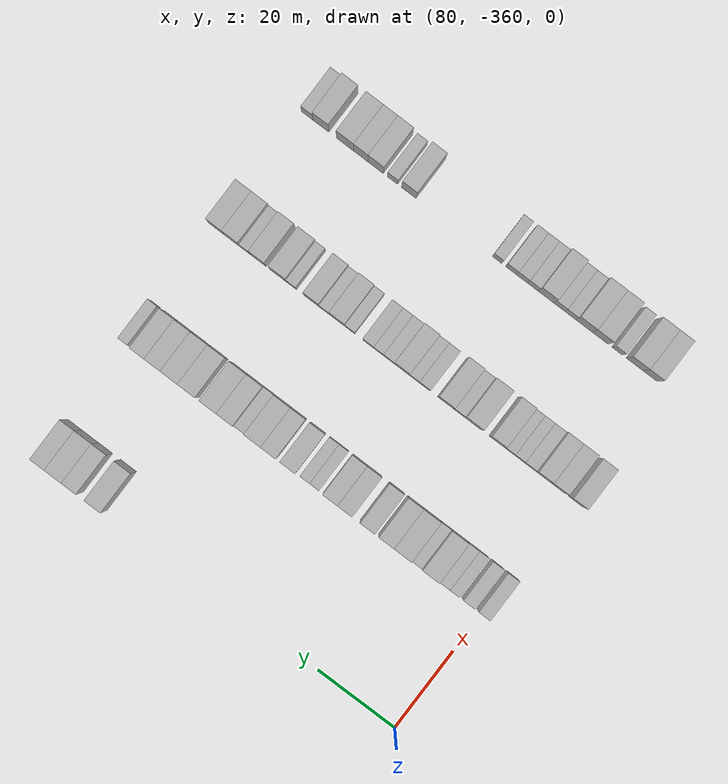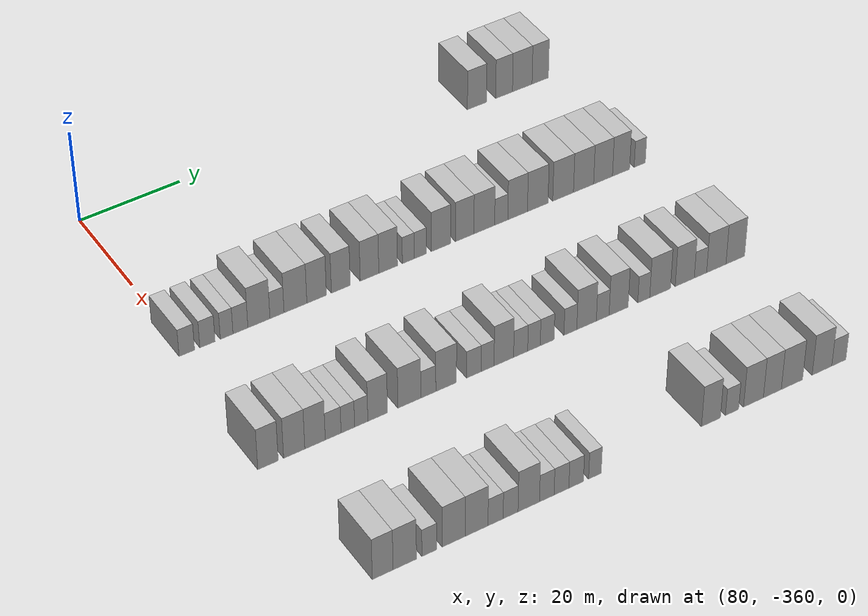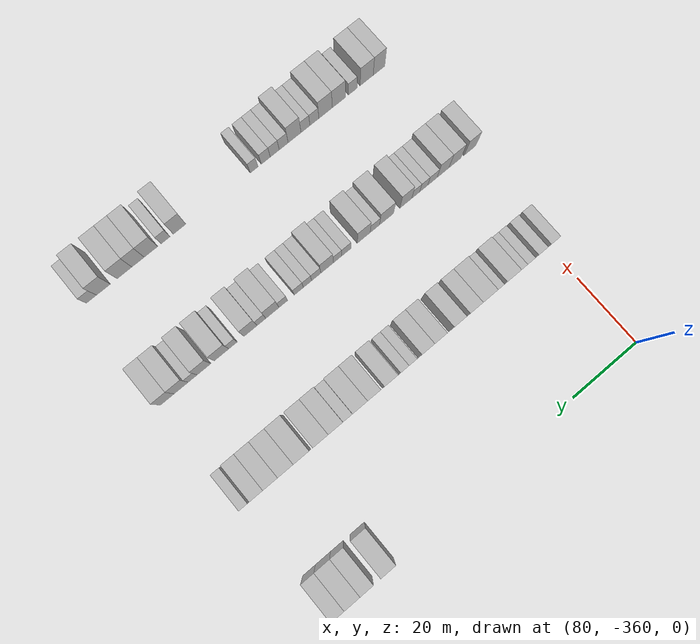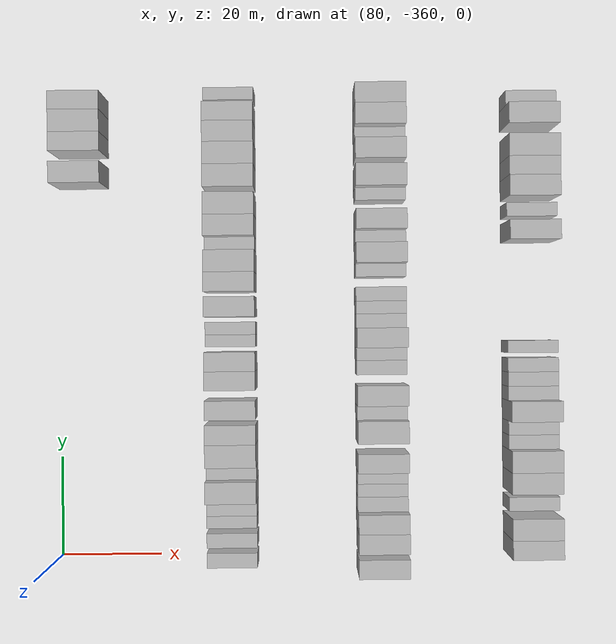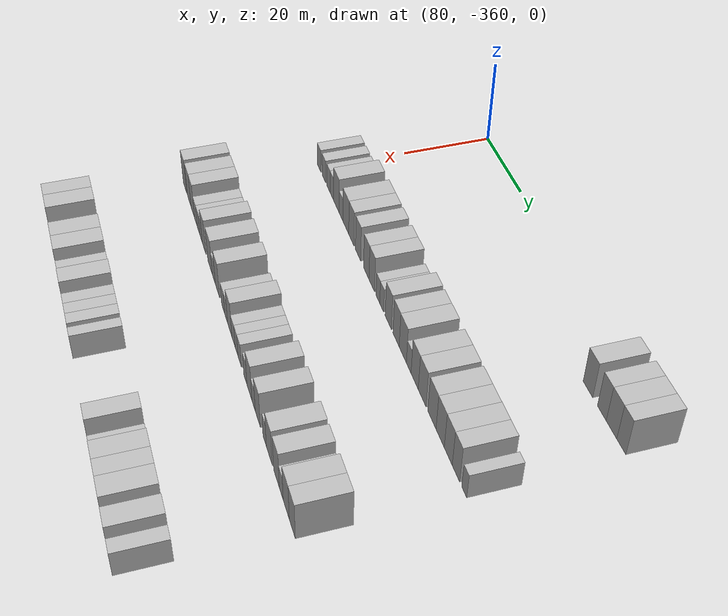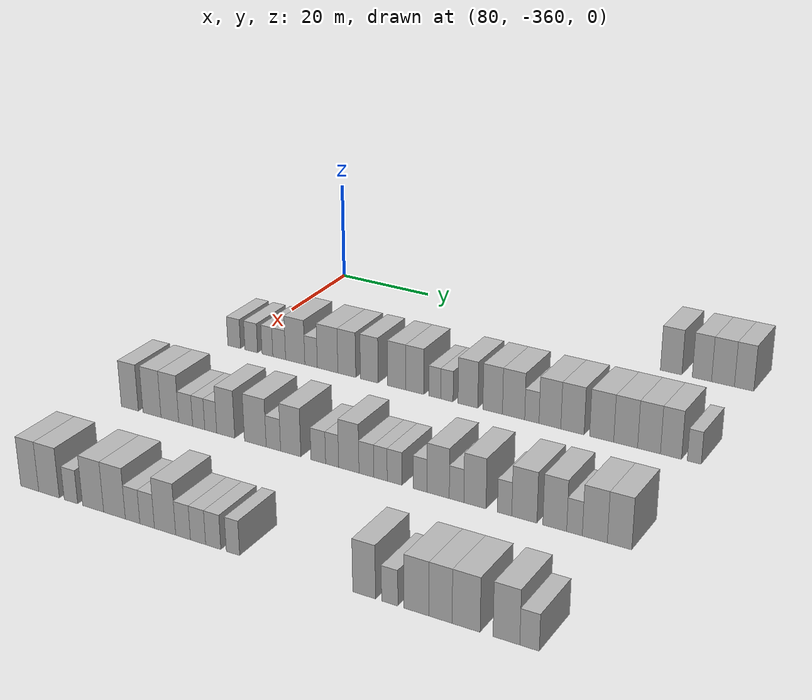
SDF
<sdf version="1.6">
 <world name="default">
  <model name="building_519">
   <static>1</static>
   <pose>85.0000 -283.2547 0 0.000000 0.000000 0.000000</pose>
   <link name="link">
    <pose>0 0 4.50 0 0 0</pose>
    <collision name="collision"><geometry><box><size>10.0000 4.2065 9.0000</size></box></geometry></collision>
    <visual name="visual">
     <cast_shadows>0</cast_shadows>
     <geometry><box><size>10.0000 4.2065 9.0000</size></box></geometry>
     <material>
      <script>
       <uri>model://HANNAS_wall/materials/scripts</uri>
       <uri>model://HANNAS_wall/materials/textures</uri>
       <name>vrc/HANNAS_wall</name>
      </script>
     </material>
    </visual>
   </link>
  </model>
  <model name="building_520">
   <static>1</static>
   <pose>85.0000 -277.2951 0 0.000000 0.000000 0.000000</pose>
   <link name="link">
    <pose>0 0 4.50 0 0 0</pose>
    <collision name="collision"><geometry><box><size>10.0000 3.7126 9.0000</size></box></geometry></collision>
    <visual name="visual">
     <cast_shadows>0</cast_shadows>
     <geometry><box><size>10.0000 3.7126 9.0000</size></box></geometry>
     <material>
      <script>
       <uri>model://HANNAS_wall/materials/scripts</uri>
       <uri>model://HANNAS_wall/materials/textures</uri>
       <name>vrc/HANNAS_wall</name>
      </script>
     </material>
    </visual>
   </link>
  </model>
  <model name="building_521">
   <static>1</static>
   <pose>85.0000 -273.2657 0 0.000000 0.000000 0.000000</pose>
   <link name="link">
    <pose>0 0 4.50 0 0 0</pose>
    <collision name="collision"><geometry><box><size>10.0000 4.3462 9.0000</size></box></geometry></collision>
    <visual name="visual">
     <cast_shadows>0</cast_shadows>
     <geometry><box><size>10.0000 4.3462 9.0000</size></box></geometry>
     <material>
      <script>
       <uri>model://HANNAS_wall/materials/scripts</uri>
       <uri>model://HANNAS_wall/materials/textures</uri>
       <name>vrc/HANNAS_wall</name>
      </script>
     </material>
    </visual>
   </link>
  </model>
  <model name="building_522">
   <static>1</static>
   <pose>85.0000 -269.2629 0 0.000000 0.000000 0.000000</pose>
   <link name="link">
    <pose>0 0 4.50 0 0 0</pose>
    <collision name="collision"><geometry><box><size>10.0000 3.6595 9.0000</size></box></geometry></collision>
    <visual name="visual">
     <cast_shadows>0</cast_shadows>
     <geometry><box><size>10.0000 3.6595 9.0000</size></box></geometry>
     <material>
      <script>
       <uri>model://HANNAS_wall/materials/scripts</uri>
       <uri>model://HANNAS_wall/materials/textures</uri>
       <name>vrc/HANNAS_wall</name>
      </script>
     </material>
    </visual>
   </link>
  </model>
  <model name="building_735">
   <static>1</static>
   <pose>115.0000 -360.0520 0 0.000000 0.000000 0.000000</pose>
   <link name="link">
    <pose>0 0 3.00 0 0 0</pose>
    <collision name="collision"><geometry><box><size>10.0000 2.9397 6.0000</size></box></geometry></collision>
    <visual name="visual">
     <cast_shadows>0</cast_shadows>
     <geometry><box><size>10.0000 2.9397 6.0000</size></box></geometry>
     <material>
      <script>
       <uri>model://HANNAS_wall/materials/scripts</uri>
       <uri>model://HANNAS_wall/materials/textures</uri>
       <name>vrc/HANNAS_wall</name>
      </script>
     </material>
    </visual>
   </link>
  </model>
  <model name="building_736">
   <static>1</static>
   <pose>115.0000 -356.1269 0 0.000000 0.000000 0.000000</pose>
   <link name="link">
    <pose>0 0 3.00 0 0 0</pose>
    <collision name="collision"><geometry><box><size>10.0000 2.9107 6.0000</size></box></geometry></collision>
    <visual name="visual">
     <cast_shadows>0</cast_shadows>
     <geometry><box><size>10.0000 2.9107 6.0000</size></box></geometry>
     <material>
      <script>
       <uri>model://HANNAS_wall/materials/scripts</uri>
       <uri>model://HANNAS_wall/materials/textures</uri>
       <name>vrc/HANNAS_wall</name>
      </script>
     </material>
    </visual>
   </link>
  </model>
  <model name="building_737">
   <static>1</static>
   <pose>115.0000 -352.4538 0 0.000000 0.000000 0.000000</pose>
   <link name="link">
    <pose>0 0 3.00 0 0 0</pose>
    <collision name="collision"><geometry><box><size>10.0000 2.4354 6.0000</size></box></geometry></collision>
    <visual name="visual">
     <cast_shadows>0</cast_shadows>
     <geometry><box><size>10.0000 2.4354 6.0000</size></box></geometry>
     <material>
      <script>
       <uri>model://HANNAS_wall/materials/scripts</uri>
       <uri>model://HANNAS_wall/materials/textures</uri>
       <name>vrc/HANNAS_wall</name>
      </script>
     </material>
    </visual>
   </link>
  </model>
  <model name="building_738">
   <static>1</static>
   <pose>115.0000 -349.7997 0 0.000000 0.000000 0.000000</pose>
   <link name="link">
    <pose>0 0 3.00 0 0 0</pose>
    <collision name="collision"><geometry><box><size>10.0000 2.8729 6.0000</size></box></geometry></collision>
    <visual name="visual">
     <cast_shadows>0</cast_shadows>
     <geometry><box><size>10.0000 2.8729 6.0000</size></box></geometry>
     <material>
      <script>
       <uri>model://HANNAS_wall/materials/scripts</uri>
       <uri>model://HANNAS_wall/materials/textures</uri>
       <name>vrc/HANNAS_wall</name>
      </script>
     </material>
    </visual>
   </link>
  </model>
  <model name="building_739">
   <static>1</static>
   <pose>115.0000 -346.2221 0 0.000000 0.000000 0.000000</pose>
   <link name="link">
    <pose>0 0 4.50 0 0 0</pose>
    <collision name="collision"><geometry><box><size>10.0000 4.2822 9.0000</size></box></geometry></collision>
    <visual name="visual">
     <cast_shadows>0</cast_shadows>
     <geometry><box><size>10.0000 4.2822 9.0000</size></box></geometry>
     <material>
      <script>
       <uri>model://HANNAS_wall/materials/scripts</uri>
       <uri>model://HANNAS_wall/materials/textures</uri>
       <name>vrc/HANNAS_wall</name>
      </script>
     </material>
    </visual>
   </link>
  </model>
  <model name="building_740">
   <static>1</static>
   <pose>115.0000 -342.7054 0 0.000000 0.000000 0.000000</pose>
   <link name="link">
    <pose>0 0 3.00 0 0 0</pose>
    <collision name="collision"><geometry><box><size>10.0000 2.7513 6.0000</size></box></geometry></collision>
    <visual name="visual">
     <cast_shadows>0</cast_shadows>
     <geometry><box><size>10.0000 2.7513 6.0000</size></box></geometry>
     <material>
      <script>
       <uri>model://HANNAS_wall/materials/scripts</uri>
       <uri>model://HANNAS_wall/materials/textures</uri>
       <name>vrc/HANNAS_wall</name>
      </script>
     </material>
    </visual>
   </link>
  </model>
  <model name="building_741">
   <static>1</static>
   <pose>115.0000 -339.0906 0 0.000000 0.000000 0.000000</pose>
   <link name="link">
    <pose>0 0 4.50 0 0 0</pose>
    <collision name="collision"><geometry><box><size>10.0000 4.4783 9.0000</size></box></geometry></collision>
    <visual name="visual">
     <cast_shadows>0</cast_shadows>
     <geometry><box><size>10.0000 4.4783 9.0000</size></box></geometry>
     <material>
      <script>
       <uri>model://HANNAS_wall/materials/scripts</uri>
       <uri>model://HANNAS_wall/materials/textures</uri>
       <name>vrc/HANNAS_wall</name>
      </script>
     </material>
    </visual>
   </link>
  </model>
  <model name="building_742">
   <static>1</static>
   <pose>115.0000 -334.9211 0 0.000000 0.000000 0.000000</pose>
   <link name="link">
    <pose>0 0 4.50 0 0 0</pose>
    <collision name="collision"><geometry><box><size>10.0000 3.8606 9.0000</size></box></geometry></collision>
    <visual name="visual">
     <cast_shadows>0</cast_shadows>
     <geometry><box><size>10.0000 3.8606 9.0000</size></box></geometry>
     <material>
      <script>
       <uri>model://HANNAS_wall/materials/scripts</uri>
       <uri>model://HANNAS_wall/materials/textures</uri>
       <name>vrc/HANNAS_wall</name>
      </script>
     </material>
    </visual>
   </link>
  </model>
  <model name="building_743">
   <static>1</static>
   <pose>115.0000 -330.1153 0 0.000000 0.000000 0.000000</pose>
   <link name="link">
    <pose>0 0 4.50 0 0 0</pose>
    <collision name="collision"><geometry><box><size>10.0000 3.7510 9.0000</size></box></geometry></collision>
    <visual name="visual">
     <cast_shadows>0</cast_shadows>
     <geometry><box><size>10.0000 3.7510 9.0000</size></box></geometry>
     <material>
      <script>
       <uri>model://HANNAS_wall/materials/scripts</uri>
       <uri>model://HANNAS_wall/materials/textures</uri>
       <name>vrc/HANNAS_wall</name>
      </script>
     </material>
    </visual>
   </link>
  </model>
  <model name="building_744">
   <static>1</static>
   <pose>115.0000 -324.3725 0 0.000000 0.000000 0.000000</pose>
   <link name="link">
    <pose>0 0 4.50 0 0 0</pose>
    <collision name="collision"><geometry><box><size>10.0000 3.7345 9.0000</size></box></geometry></collision>
    <visual name="visual">
     <cast_shadows>0</cast_shadows>
     <geometry><box><size>10.0000 3.7345 9.0000</size></box></geometry>
     <material>
      <script>
       <uri>model://HANNAS_wall/materials/scripts</uri>
       <uri>model://HANNAS_wall/materials/textures</uri>
       <name>vrc/HANNAS_wall</name>
      </script>
     </material>
    </visual>
   </link>
  </model>
  <model name="building_745">
   <static>1</static>
   <pose>115.0000 -320.6207 0 0.000000 0.000000 0.000000</pose>
   <link name="link">
    <pose>0 0 4.50 0 0 0</pose>
    <collision name="collision"><geometry><box><size>10.0000 3.7691 9.0000</size></box></geometry></collision>
    <visual name="visual">
     <cast_shadows>0</cast_shadows>
     <geometry><box><size>10.0000 3.7691 9.0000</size></box></geometry>
     <material>
      <script>
       <uri>model://HANNAS_wall/materials/scripts</uri>
       <uri>model://HANNAS_wall/materials/textures</uri>
       <name>vrc/HANNAS_wall</name>
      </script>
     </material>
    </visual>
   </link>
  </model>
  <model name="building_746">
   <static>1</static>
   <pose>115.0000 -316.5334 0 0.000000 0.000000 0.000000</pose>
   <link name="link">
    <pose>0 0 3.00 0 0 0</pose>
    <collision name="collision"><geometry><box><size>10.0000 2.4054 6.0000</size></box></geometry></collision>
    <visual name="visual">
     <cast_shadows>0</cast_shadows>
     <geometry><box><size>10.0000 2.4054 6.0000</size></box></geometry>
     <material>
      <script>
       <uri>model://HANNAS_wall/materials/scripts</uri>
       <uri>model://HANNAS_wall/materials/textures</uri>
       <name>vrc/HANNAS_wall</name>
      </script>
     </material>
    </visual>
   </link>
  </model>
  <model name="building_747">
   <static>1</static>
   <pose>115.0000 -314.0734 0 0.000000 0.000000 0.000000</pose>
   <link name="link">
    <pose>0 0 3.00 0 0 0</pose>
    <collision name="collision"><geometry><box><size>10.0000 2.5146 6.0000</size></box></geometry></collision>
    <visual name="visual">
     <cast_shadows>0</cast_shadows>
     <geometry><box><size>10.0000 2.5146 6.0000</size></box></geometry>
     <material>
      <script>
       <uri>model://HANNAS_wall/materials/scripts</uri>
       <uri>model://HANNAS_wall/materials/textures</uri>
       <name>vrc/HANNAS_wall</name>
      </script>
     </material>
    </visual>
   </link>
  </model>
  <model name="building_748">
   <static>1</static>
   <pose>115.0000 -309.8380 0 0.000000 0.000000 0.000000</pose>
   <link name="link">
    <pose>0 0 4.50 0 0 0</pose>
    <collision name="collision"><geometry><box><size>10.0000 3.9563 9.0000</size></box></geometry></collision>
    <visual name="visual">
     <cast_shadows>0</cast_shadows>
     <geometry><box><size>10.0000 3.9563 9.0000</size></box></geometry>
     <material>
      <script>
       <uri>model://HANNAS_wall/materials/scripts</uri>
       <uri>model://HANNAS_wall/materials/textures</uri>
       <name>vrc/HANNAS_wall</name>
      </script>
     </material>
    </visual>
   </link>
  </model>
  <model name="building_749">
   <static>1</static>
   <pose>115.0000 -304.9396 0 0.000000 0.000000 0.000000</pose>
   <link name="link">
    <pose>0 0 4.50 0 0 0</pose>
    <collision name="collision"><geometry><box><size>10.0000 3.8405 9.0000</size></box></geometry></collision>
    <visual name="visual">
     <cast_shadows>0</cast_shadows>
     <geometry><box><size>10.0000 3.8405 9.0000</size></box></geometry>
     <material>
      <script>
       <uri>model://HANNAS_wall/materials/scripts</uri>
       <uri>model://HANNAS_wall/materials/textures</uri>
       <name>vrc/HANNAS_wall</name>
      </script>
     </material>
    </visual>
   </link>
  </model>
  <model name="building_750">
   <static>1</static>
   <pose>115.0000 -300.8592 0 0.000000 0.000000 0.000000</pose>
   <link name="link">
    <pose>0 0 4.50 0 0 0</pose>
    <collision name="collision"><geometry><box><size>10.0000 4.3204 9.0000</size></box></geometry></collision>
    <visual name="visual">
     <cast_shadows>0</cast_shadows>
     <geometry><box><size>10.0000 4.3204 9.0000</size></box></geometry>
     <material>
      <script>
       <uri>model://HANNAS_wall/materials/scripts</uri>
       <uri>model://HANNAS_wall/materials/textures</uri>
       <name>vrc/HANNAS_wall</name>
      </script>
     </material>
    </visual>
   </link>
  </model>
  <model name="building_751">
   <static>1</static>
   <pose>115.0000 -297.3256 0 0.000000 0.000000 0.000000</pose>
   <link name="link">
    <pose>0 0 3.00 0 0 0</pose>
    <collision name="collision"><geometry><box><size>10.0000 2.7468 6.0000</size></box></geometry></collision>
    <visual name="visual">
     <cast_shadows>0</cast_shadows>
     <geometry><box><size>10.0000 2.7468 6.0000</size></box></geometry>
     <material>
      <script>
       <uri>model://HANNAS_wall/materials/scripts</uri>
       <uri>model://HANNAS_wall/materials/textures</uri>
       <name>vrc/HANNAS_wall</name>
      </script>
     </material>
    </visual>
   </link>
  </model>
  <model name="building_752">
   <static>1</static>
   <pose>115.0000 -293.8792 0 0.000000 0.000000 0.000000</pose>
   <link name="link">
    <pose>0 0 4.50 0 0 0</pose>
    <collision name="collision"><geometry><box><size>10.0000 4.1459 9.0000</size></box></geometry></collision>
    <visual name="visual">
     <cast_shadows>0</cast_shadows>
     <geometry><box><size>10.0000 4.1459 9.0000</size></box></geometry>
     <material>
      <script>
       <uri>model://HANNAS_wall/materials/scripts</uri>
       <uri>model://HANNAS_wall/materials/textures</uri>
       <name>vrc/HANNAS_wall</name>
      </script>
     </material>
    </visual>
   </link>
  </model>
  <model name="building_753">
   <static>1</static>
   <pose>115.0000 -289.6185 0 0.000000 0.000000 0.000000</pose>
   <link name="link">
    <pose>0 0 4.50 0 0 0</pose>
    <collision name="collision"><geometry><box><size>10.0000 4.3756 9.0000</size></box></geometry></collision>
    <visual name="visual">
     <cast_shadows>0</cast_shadows>
     <geometry><box><size>10.0000 4.3756 9.0000</size></box></geometry>
     <material>
      <script>
       <uri>model://HANNAS_wall/materials/scripts</uri>
       <uri>model://HANNAS_wall/materials/textures</uri>
       <name>vrc/HANNAS_wall</name>
      </script>
     </material>
    </visual>
   </link>
  </model>
  <model name="building_754">
   <static>1</static>
   <pose>115.0000 -284.2070 0 0.000000 0.000000 0.000000</pose>
   <link name="link">
    <pose>0 0 4.50 0 0 0</pose>
    <collision name="collision"><geometry><box><size>10.0000 4.4474 9.0000</size></box></geometry></collision>
    <visual name="visual">
     <cast_shadows>0</cast_shadows>
     <geometry><box><size>10.0000 4.4474 9.0000</size></box></geometry>
     <material>
      <script>
       <uri>model://HANNAS_wall/materials/scripts</uri>
       <uri>model://HANNAS_wall/materials/textures</uri>
       <name>vrc/HANNAS_wall</name>
      </script>
     </material>
    </visual>
   </link>
  </model>
  <model name="building_755">
   <static>1</static>
   <pose>115.0000 -279.8107 0 0.000000 0.000000 0.000000</pose>
   <link name="link">
    <pose>0 0 4.50 0 0 0</pose>
    <collision name="collision"><geometry><box><size>10.0000 4.3452 9.0000</size></box></geometry></collision>
    <visual name="visual">
     <cast_shadows>0</cast_shadows>
     <geometry><box><size>10.0000 4.3452 9.0000</size></box></geometry>
     <material>
      <script>
       <uri>model://HANNAS_wall/materials/scripts</uri>
       <uri>model://HANNAS_wall/materials/textures</uri>
       <name>vrc/HANNAS_wall</name>
      </script>
     </material>
    </visual>
   </link>
  </model>
  <model name="building_756">
   <static>1</static>
   <pose>115.0000 -275.5904 0 0.000000 0.000000 0.000000</pose>
   <link name="link">
    <pose>0 0 4.50 0 0 0</pose>
    <collision name="collision"><geometry><box><size>10.0000 4.0954 9.0000</size></box></geometry></collision>
    <visual name="visual">
     <cast_shadows>0</cast_shadows>
     <geometry><box><size>10.0000 4.0954 9.0000</size></box></geometry>
     <material>
      <script>
       <uri>model://HANNAS_wall/materials/scripts</uri>
       <uri>model://HANNAS_wall/materials/textures</uri>
       <name>vrc/HANNAS_wall</name>
      </script>
     </material>
    </visual>
   </link>
  </model>
  <model name="building_757">
   <static>1</static>
   <pose>115.0000 -271.6725 0 0.000000 0.000000 0.000000</pose>
   <link name="link">
    <pose>0 0 4.50 0 0 0</pose>
    <collision name="collision"><geometry><box><size>10.0000 3.7405 9.0000</size></box></geometry></collision>
    <visual name="visual">
     <cast_shadows>0</cast_shadows>
     <geometry><box><size>10.0000 3.7405 9.0000</size></box></geometry>
     <material>
      <script>
       <uri>model://HANNAS_wall/materials/scripts</uri>
       <uri>model://HANNAS_wall/materials/textures</uri>
       <name>vrc/HANNAS_wall</name>
      </script>
     </material>
    </visual>
   </link>
  </model>
  <model name="building_758">
   <static>1</static>
   <pose>115.0000 -267.5728 0 0.000000 0.000000 0.000000</pose>
   <link name="link">
    <pose>0 0 3.00 0 0 0</pose>
    <collision name="collision"><geometry><box><size>10.0000 2.4589 6.0000</size></box></geometry></collision>
    <visual name="visual">
     <cast_shadows>0</cast_shadows>
     <geometry><box><size>10.0000 2.4589 6.0000</size></box></geometry>
     <material>
      <script>
       <uri>model://HANNAS_wall/materials/scripts</uri>
       <uri>model://HANNAS_wall/materials/textures</uri>
       <name>vrc/HANNAS_wall</name>
      </script>
     </material>
    </visual>
   </link>
  </model>
  <model name="building_969">
   <static>1</static>
   <pose>145.0000 -361.3672 0 0.000000 0.000000 0.000000</pose>
   <link name="link">
    <pose>0 0 4.50 0 0 0</pose>
    <collision name="collision"><geometry><box><size>10.0000 3.7645 9.0000</size></box></geometry></collision>
    <visual name="visual">
     <cast_shadows>0</cast_shadows>
     <geometry><box><size>10.0000 3.7645 9.0000</size></box></geometry>
     <material>
      <script>
       <uri>model://HANNAS_wall/materials/scripts</uri>
       <uri>model://HANNAS_wall/materials/textures</uri>
       <name>vrc/HANNAS_wall</name>
      </script>
     </material>
    </visual>
   </link>
  </model>
  <model name="building_970">
   <static>1</static>
   <pose>145.0000 -356.5145 0 0.000000 0.000000 0.000000</pose>
   <link name="link">
    <pose>0 0 4.50 0 0 0</pose>
    <collision name="collision"><geometry><box><size>10.0000 3.9409 9.0000</size></box></geometry></collision>
    <visual name="visual">
     <cast_shadows>0</cast_shadows>
     <geometry><box><size>10.0000 3.9409 9.0000</size></box></geometry>
     <material>
      <script>
       <uri>model://HANNAS_wall/materials/scripts</uri>
       <uri>model://HANNAS_wall/materials/textures</uri>
       <name>vrc/HANNAS_wall</name>
      </script>
     </material>
    </visual>
   </link>
  </model>
  <model name="building_971">
   <static>1</static>
   <pose>145.0000 -352.6309 0 0.000000 0.000000 0.000000</pose>
   <link name="link">
    <pose>0 0 4.50 0 0 0</pose>
    <collision name="collision"><geometry><box><size>10.0000 3.8265 9.0000</size></box></geometry></collision>
    <visual name="visual">
     <cast_shadows>0</cast_shadows>
     <geometry><box><size>10.0000 3.8265 9.0000</size></box></geometry>
     <material>
      <script>
       <uri>model://HANNAS_wall/materials/scripts</uri>
       <uri>model://HANNAS_wall/materials/textures</uri>
       <name>vrc/HANNAS_wall</name>
      </script>
     </material>
    </visual>
   </link>
  </model>
  <model name="building_972">
   <static>1</static>
   <pose>145.0000 -349.2285 0 0.000000 0.000000 0.000000</pose>
   <link name="link">
    <pose>0 0 3.00 0 0 0</pose>
    <collision name="collision"><geometry><box><size>10.0000 2.9784 6.0000</size></box></geometry></collision>
    <visual name="visual">
     <cast_shadows>0</cast_shadows>
     <geometry><box><size>10.0000 2.9784 6.0000</size></box></geometry>
     <material>
      <script>
       <uri>model://HANNAS_wall/materials/scripts</uri>
       <uri>model://HANNAS_wall/materials/textures</uri>
       <name>vrc/HANNAS_wall</name>
      </script>
     </material>
    </visual>
   </link>
  </model>
  <model name="building_973">
   <static>1</static>
   <pose>145.0000 -346.4572 0 0.000000 0.000000 0.000000</pose>
   <link name="link">
    <pose>0 0 3.00 0 0 0</pose>
    <collision name="collision"><geometry><box><size>10.0000 2.5642 6.0000</size></box></geometry></collision>
    <visual name="visual">
     <cast_shadows>0</cast_shadows>
     <geometry><box><size>10.0000 2.5642 6.0000</size></box></geometry>
     <material>
      <script>
       <uri>model://HANNAS_wall/materials/scripts</uri>
       <uri>model://HANNAS_wall/materials/textures</uri>
       <name>vrc/HANNAS_wall</name>
      </script>
     </material>
    </visual>
   </link>
  </model>
  <model name="building_974">
   <static>1</static>
   <pose>145.0000 -343.9205 0 0.000000 0.000000 0.000000</pose>
   <link name="link">
    <pose>0 0 3.00 0 0 0</pose>
    <collision name="collision"><geometry><box><size>10.0000 2.5092 6.0000</size></box></geometry></collision>
    <visual name="visual">
     <cast_shadows>0</cast_shadows>
     <geometry><box><size>10.0000 2.5092 6.0000</size></box></geometry>
     <material>
      <script>
       <uri>model://HANNAS_wall/materials/scripts</uri>
       <uri>model://HANNAS_wall/materials/textures</uri>
       <name>vrc/HANNAS_wall</name>
      </script>
     </material>
    </visual>
   </link>
  </model>
  <model name="building_975">
   <static>1</static>
   <pose>145.0000 -340.7876 0 0.000000 0.000000 0.000000</pose>
   <link name="link">
    <pose>0 0 4.50 0 0 0</pose>
    <collision name="collision"><geometry><box><size>10.0000 3.7567 9.0000</size></box></geometry></collision>
    <visual name="visual">
     <cast_shadows>0</cast_shadows>
     <geometry><box><size>10.0000 3.7567 9.0000</size></box></geometry>
     <material>
      <script>
       <uri>model://HANNAS_wall/materials/scripts</uri>
       <uri>model://HANNAS_wall/materials/textures</uri>
       <name>vrc/HANNAS_wall</name>
      </script>
     </material>
    </visual>
   </link>
  </model>
  <model name="building_976">
   <static>1</static>
   <pose>145.0000 -334.7008 0 0.000000 0.000000 0.000000</pose>
   <link name="link">
    <pose>0 0 4.50 0 0 0</pose>
    <collision name="collision"><geometry><box><size>10.0000 4.4168 9.0000</size></box></geometry></collision>
    <visual name="visual">
     <cast_shadows>0</cast_shadows>
     <geometry><box><size>10.0000 4.4168 9.0000</size></box></geometry>
     <material>
      <script>
       <uri>model://HANNAS_wall/materials/scripts</uri>
       <uri>model://HANNAS_wall/materials/textures</uri>
       <name>vrc/HANNAS_wall</name>
      </script>
     </material>
    </visual>
   </link>
  </model>
  <model name="building_977">
   <static>1</static>
   <pose>145.0000 -331.0349 0 0.000000 0.000000 0.000000</pose>
   <link name="link">
    <pose>0 0 3.00 0 0 0</pose>
    <collision name="collision"><geometry><box><size>10.0000 2.9151 6.0000</size></box></geometry></collision>
    <visual name="visual">
     <cast_shadows>0</cast_shadows>
     <geometry><box><size>10.0000 2.9151 6.0000</size></box></geometry>
     <material>
      <script>
       <uri>model://HANNAS_wall/materials/scripts</uri>
       <uri>model://HANNAS_wall/materials/textures</uri>
       <name>vrc/HANNAS_wall</name>
      </script>
     </material>
    </visual>
   </link>
  </model>
  <model name="building_978">
   <static>1</static>
   <pose>145.0000 -327.5613 0 0.000000 0.000000 0.000000</pose>
   <link name="link">
    <pose>0 0 4.50 0 0 0</pose>
    <collision name="collision"><geometry><box><size>10.0000 4.0320 9.0000</size></box></geometry></collision>
    <visual name="visual">
     <cast_shadows>0</cast_shadows>
     <geometry><box><size>10.0000 4.0320 9.0000</size></box></geometry>
     <material>
      <script>
       <uri>model://HANNAS_wall/materials/scripts</uri>
       <uri>model://HANNAS_wall/materials/textures</uri>
       <name>vrc/HANNAS_wall</name>
      </script>
     </material>
    </visual>
   </link>
  </model>
  <model name="building_979">
   <static>1</static>
   <pose>145.0000 -322.1155 0 0.000000 0.000000 0.000000</pose>
   <link name="link">
    <pose>0 0 3.00 0 0 0</pose>
    <collision name="collision"><geometry><box><size>10.0000 2.8598 6.0000</size></box></geometry></collision>
    <visual name="visual">
     <cast_shadows>0</cast_shadows>
     <geometry><box><size>10.0000 2.8598 6.0000</size></box></geometry>
     <material>
      <script>
       <uri>model://HANNAS_wall/materials/scripts</uri>
       <uri>model://HANNAS_wall/materials/textures</uri>
       <name>vrc/HANNAS_wall</name>
      </script>
     </material>
    </visual>
   </link>
  </model>
  <model name="building_980">
   <static>1</static>
   <pose>145.0000 -319.4161 0 0.000000 0.000000 0.000000</pose>
   <link name="link">
    <pose>0 0 3.00 0 0 0</pose>
    <collision name="collision"><geometry><box><size>10.0000 2.5389 6.0000</size></box></geometry></collision>
    <visual name="visual">
     <cast_shadows>0</cast_shadows>
     <geometry><box><size>10.0000 2.5389 6.0000</size></box></geometry>
     <material>
      <script>
       <uri>model://HANNAS_wall/materials/scripts</uri>
       <uri>model://HANNAS_wall/materials/textures</uri>
       <name>vrc/HANNAS_wall</name>
      </script>
     </material>
    </visual>
   </link>
  </model>
  <model name="building_981">
   <static>1</static>
   <pose>145.0000 -316.1980 0 0.000000 0.000000 0.000000</pose>
   <link name="link">
    <pose>0 0 4.50 0 0 0</pose>
    <collision name="collision"><geometry><box><size>10.0000 3.8974 9.0000</size></box></geometry></collision>
    <visual name="visual">
     <cast_shadows>0</cast_shadows>
     <geometry><box><size>10.0000 3.8974 9.0000</size></box></geometry>
     <material>
      <script>
       <uri>model://HANNAS_wall/materials/scripts</uri>
       <uri>model://HANNAS_wall/materials/textures</uri>
       <name>vrc/HANNAS_wall</name>
      </script>
     </material>
    </visual>
   </link>
  </model>
  <model name="building_982">
   <static>1</static>
   <pose>145.0000 -312.8427 0 0.000000 0.000000 0.000000</pose>
   <link name="link">
    <pose>0 0 3.00 0 0 0</pose>
    <collision name="collision"><geometry><box><size>10.0000 2.8132 6.0000</size></box></geometry></collision>
    <visual name="visual">
     <cast_shadows>0</cast_shadows>
     <geometry><box><size>10.0000 2.8132 6.0000</size></box></geometry>
     <material>
      <script>
       <uri>model://HANNAS_wall/materials/scripts</uri>
       <uri>model://HANNAS_wall/materials/textures</uri>
       <name>vrc/HANNAS_wall</name>
      </script>
     </material>
    </visual>
   </link>
  </model>
  <model name="building_983">
   <static>1</static>
   <pose>145.0000 -310.1755 0 0.000000 0.000000 0.000000</pose>
   <link name="link">
    <pose>0 0 3.00 0 0 0</pose>
    <collision name="collision"><geometry><box><size>10.0000 2.5213 6.0000</size></box></geometry></collision>
    <visual name="visual">
     <cast_shadows>0</cast_shadows>
     <geometry><box><size>10.0000 2.5213 6.0000</size></box></geometry>
     <material>
      <script>
       <uri>model://HANNAS_wall/materials/scripts</uri>
       <uri>model://HANNAS_wall/materials/textures</uri>
       <name>vrc/HANNAS_wall</name>
      </script>
     </material>
    </visual>
   </link>
  </model>
  <model name="building_984">
   <static>1</static>
   <pose>145.0000 -307.5175 0 0.000000 0.000000 0.000000</pose>
   <link name="link">
    <pose>0 0 3.00 0 0 0</pose>
    <collision name="collision"><geometry><box><size>10.0000 2.7946 6.0000</size></box></geometry></collision>
    <visual name="visual">
     <cast_shadows>0</cast_shadows>
     <geometry><box><size>10.0000 2.7946 6.0000</size></box></geometry>
     <material>
      <script>
       <uri>model://HANNAS_wall/materials/scripts</uri>
       <uri>model://HANNAS_wall/materials/textures</uri>
       <name>vrc/HANNAS_wall</name>
      </script>
     </material>
    </visual>
   </link>
  </model>
  <model name="building_985">
   <static>1</static>
   <pose>145.0000 -302.8137 0 0.000000 0.000000 0.000000</pose>
   <link name="link">
    <pose>0 0 3.00 0 0 0</pose>
    <collision name="collision"><geometry><box><size>10.0000 2.6130 6.0000</size></box></geometry></collision>
    <visual name="visual">
     <cast_shadows>0</cast_shadows>
     <geometry><box><size>10.0000 2.6130 6.0000</size></box></geometry>
     <material>
      <script>
       <uri>model://HANNAS_wall/materials/scripts</uri>
       <uri>model://HANNAS_wall/materials/textures</uri>
       <name>vrc/HANNAS_wall</name>
      </script>
     </material>
    </visual>
   </link>
  </model>
  <model name="building_986">
   <static>1</static>
   <pose>145.0000 -299.5081 0 0.000000 0.000000 0.000000</pose>
   <link name="link">
    <pose>0 0 4.50 0 0 0</pose>
    <collision name="collision"><geometry><box><size>10.0000 3.9981 9.0000</size></box></geometry></collision>
    <visual name="visual">
     <cast_shadows>0</cast_shadows>
     <geometry><box><size>10.0000 3.9981 9.0000</size></box></geometry>
     <material>
      <script>
       <uri>model://HANNAS_wall/materials/scripts</uri>
       <uri>model://HANNAS_wall/materials/textures</uri>
       <name>vrc/HANNAS_wall</name>
      </script>
     </material>
    </visual>
   </link>
  </model>
  <model name="building_987">
   <static>1</static>
   <pose>145.0000 -296.1993 0 0.000000 0.000000 0.000000</pose>
   <link name="link">
    <pose>0 0 3.00 0 0 0</pose>
    <collision name="collision"><geometry><box><size>10.0000 2.6195 6.0000</size></box></geometry></collision>
    <visual name="visual">
     <cast_shadows>0</cast_shadows>
     <geometry><box><size>10.0000 2.6195 6.0000</size></box></geometry>
     <material>
      <script>
       <uri>model://HANNAS_wall/materials/scripts</uri>
       <uri>model://HANNAS_wall/materials/textures</uri>
       <name>vrc/HANNAS_wall</name>
      </script>
     </material>
    </visual>
   </link>
  </model>
  <model name="building_988">
   <static>1</static>
   <pose>145.0000 -292.9183 0 0.000000 0.000000 0.000000</pose>
   <link name="link">
    <pose>0 0 4.50 0 0 0</pose>
    <collision name="collision"><geometry><box><size>10.0000 3.9426 9.0000</size></box></geometry></collision>
    <visual name="visual">
     <cast_shadows>0</cast_shadows>
     <geometry><box><size>10.0000 3.9426 9.0000</size></box></geometry>
     <material>
      <script>
       <uri>model://HANNAS_wall/materials/scripts</uri>
       <uri>model://HANNAS_wall/materials/textures</uri>
       <name>vrc/HANNAS_wall</name>
      </script>
     </material>
    </visual>
   </link>
  </model>
  <model name="building_989">
   <static>1</static>
   <pose>145.0000 -287.6978 0 0.000000 0.000000 0.000000</pose>
   <link name="link">
    <pose>0 0 3.00 0 0 0</pose>
    <collision name="collision"><geometry><box><size>10.0000 2.4984 6.0000</size></box></geometry></collision>
    <visual name="visual">
     <cast_shadows>0</cast_shadows>
     <geometry><box><size>10.0000 2.4984 6.0000</size></box></geometry>
     <material>
      <script>
       <uri>model://HANNAS_wall/materials/scripts</uri>
       <uri>model://HANNAS_wall/materials/textures</uri>
       <name>vrc/HANNAS_wall</name>
      </script>
     </material>
    </visual>
   </link>
  </model>
  <model name="building_990">
   <static>1</static>
   <pose>145.0000 -284.2763 0 0.000000 0.000000 0.000000</pose>
   <link name="link">
    <pose>0 0 4.50 0 0 0</pose>
    <collision name="collision"><geometry><box><size>10.0000 4.3447 9.0000</size></box></geometry></collision>
    <visual name="visual">
     <cast_shadows>0</cast_shadows>
     <geometry><box><size>10.0000 4.3447 9.0000</size></box></geometry>
     <material>
      <script>
       <uri>model://HANNAS_wall/materials/scripts</uri>
       <uri>model://HANNAS_wall/materials/textures</uri>
       <name>vrc/HANNAS_wall</name>
      </script>
     </material>
    </visual>
   </link>
  </model>
  <model name="building_991">
   <static>1</static>
   <pose>145.0000 -279.0872 0 0.000000 0.000000 0.000000</pose>
   <link name="link">
    <pose>0 0 4.50 0 0 0</pose>
    <collision name="collision"><geometry><box><size>10.0000 4.0335 9.0000</size></box></geometry></collision>
    <visual name="visual">
     <cast_shadows>0</cast_shadows>
     <geometry><box><size>10.0000 4.0335 9.0000</size></box></geometry>
     <material>
      <script>
       <uri>model://HANNAS_wall/materials/scripts</uri>
       <uri>model://HANNAS_wall/materials/textures</uri>
       <name>vrc/HANNAS_wall</name>
      </script>
     </material>
    </visual>
   </link>
  </model>
  <model name="building_992">
   <static>1</static>
   <pose>145.0000 -275.7601 0 0.000000 0.000000 0.000000</pose>
   <link name="link">
    <pose>0 0 3.00 0 0 0</pose>
    <collision name="collision"><geometry><box><size>10.0000 2.6207 6.0000</size></box></geometry></collision>
    <visual name="visual">
     <cast_shadows>0</cast_shadows>
     <geometry><box><size>10.0000 2.6207 6.0000</size></box></geometry>
     <material>
      <script>
       <uri>model://HANNAS_wall/materials/scripts</uri>
       <uri>model://HANNAS_wall/materials/textures</uri>
       <name>vrc/HANNAS_wall</name>
      </script>
     </material>
    </visual>
   </link>
  </model>
  <model name="building_993">
   <static>1</static>
   <pose>145.0000 -272.3830 0 0.000000 0.000000 0.000000</pose>
   <link name="link">
    <pose>0 0 4.50 0 0 0</pose>
    <collision name="collision"><geometry><box><size>10.0000 4.1334 9.0000</size></box></geometry></collision>
    <visual name="visual">
     <cast_shadows>0</cast_shadows>
     <geometry><box><size>10.0000 4.1334 9.0000</size></box></geometry>
     <material>
      <script>
       <uri>model://HANNAS_wall/materials/scripts</uri>
       <uri>model://HANNAS_wall/materials/textures</uri>
       <name>vrc/HANNAS_wall</name>
      </script>
     </material>
    </visual>
   </link>
  </model>
  <model name="building_994">
   <static>1</static>
   <pose>145.0000 -268.3143 0 0.000000 0.000000 0.000000</pose>
   <link name="link">
    <pose>0 0 4.50 0 0 0</pose>
    <collision name="collision"><geometry><box><size>10.0000 4.0040 9.0000</size></box></geometry></collision>
    <visual name="visual">
     <cast_shadows>0</cast_shadows>
     <geometry><box><size>10.0000 4.0040 9.0000</size></box></geometry>
     <material>
      <script>
       <uri>model://HANNAS_wall/materials/scripts</uri>
       <uri>model://HANNAS_wall/materials/textures</uri>
       <name>vrc/HANNAS_wall</name>
      </script>
     </material>
    </visual>
   </link>
  </model>
  <model name="building_1186">
   <static>1</static>
   <pose>175.0000 -357.9380 0 0.000000 0.000000 0.000000</pose>
   <link name="link">
    <pose>0 0 4.50 0 0 0</pose>
    <collision name="collision"><geometry><box><size>10.0000 3.7518 9.0000</size></box></geometry></collision>
    <visual name="visual">
     <cast_shadows>0</cast_shadows>
     <geometry><box><size>10.0000 3.7518 9.0000</size></box></geometry>
     <material>
      <script>
       <uri>model://HANNAS_wall/materials/scripts</uri>
       <uri>model://HANNAS_wall/materials/textures</uri>
       <name>vrc/HANNAS_wall</name>
      </script>
     </material>
    </visual>
   </link>
  </model>
  <model name="building_1187">
   <static>1</static>
   <pose>175.0000 -353.9342 0 0.000000 0.000000 0.000000</pose>
   <link name="link">
    <pose>0 0 4.50 0 0 0</pose>
    <collision name="collision"><geometry><box><size>10.0000 4.2559 9.0000</size></box></geometry></collision>
    <visual name="visual">
     <cast_shadows>0</cast_shadows>
     <geometry><box><size>10.0000 4.2559 9.0000</size></box></geometry>
     <material>
      <script>
       <uri>model://HANNAS_wall/materials/scripts</uri>
       <uri>model://HANNAS_wall/materials/textures</uri>
       <name>vrc/HANNAS_wall</name>
      </script>
     </material>
    </visual>
   </link>
  </model>
  <model name="building_1188">
   <static>1</static>
   <pose>175.0000 -349.4387 0 0.000000 0.000000 0.000000</pose>
   <link name="link">
    <pose>0 0 3.00 0 0 0</pose>
    <collision name="collision"><geometry><box><size>10.0000 2.7350 6.0000</size></box></geometry></collision>
    <visual name="visual">
     <cast_shadows>0</cast_shadows>
     <geometry><box><size>10.0000 2.7350 6.0000</size></box></geometry>
     <material>
      <script>
       <uri>model://HANNAS_wall/materials/scripts</uri>
       <uri>model://HANNAS_wall/materials/textures</uri>
       <name>vrc/HANNAS_wall</name>
      </script>
     </material>
    </visual>
   </link>
  </model>
  <model name="building_1189">
   <static>1</static>
   <pose>175.0000 -344.9630 0 0.000000 0.000000 0.000000</pose>
   <link name="link">
    <pose>0 0 4.50 0 0 0</pose>
    <collision name="collision"><geometry><box><size>10.0000 4.2164 9.0000</size></box></geometry></collision>
    <visual name="visual">
     <cast_shadows>0</cast_shadows>
     <geometry><box><size>10.0000 4.2164 9.0000</size></box></geometry>
     <material>
      <script>
       <uri>model://HANNAS_wall/materials/scripts</uri>
       <uri>model://HANNAS_wall/materials/textures</uri>
       <name>vrc/HANNAS_wall</name>
      </script>
     </material>
    </visual>
   </link>
  </model>
  <model name="building_1190">
   <static>1</static>
   <pose>175.0000 -340.7198 0 0.000000 0.000000 0.000000</pose>
   <link name="link">
    <pose>0 0 4.50 0 0 0</pose>
    <collision name="collision"><geometry><box><size>10.0000 4.2700 9.0000</size></box></geometry></collision>
    <visual name="visual">
     <cast_shadows>0</cast_shadows>
     <geometry><box><size>10.0000 4.2700 9.0000</size></box></geometry>
     <material>
      <script>
       <uri>model://HANNAS_wall/materials/scripts</uri>
       <uri>model://HANNAS_wall/materials/textures</uri>
       <name>vrc/HANNAS_wall</name>
      </script>
     </material>
    </visual>
   </link>
  </model>
  <model name="building_1191">
   <static>1</static>
   <pose>175.0000 -337.1663 0 0.000000 0.000000 0.000000</pose>
   <link name="link">
    <pose>0 0 3.00 0 0 0</pose>
    <collision name="collision"><geometry><box><size>10.0000 2.8370 6.0000</size></box></geometry></collision>
    <visual name="visual">
     <cast_shadows>0</cast_shadows>
     <geometry><box><size>10.0000 2.8370 6.0000</size></box></geometry>
     <material>
      <script>
       <uri>model://HANNAS_wall/materials/scripts</uri>
       <uri>model://HANNAS_wall/materials/textures</uri>
       <name>vrc/HANNAS_wall</name>
      </script>
     </material>
    </visual>
   </link>
  </model>
  <model name="building_1192">
   <static>1</static>
   <pose>175.0000 -334.3455 0 0.000000 0.000000 0.000000</pose>
   <link name="link">
    <pose>0 0 3.00 0 0 0</pose>
    <collision name="collision"><geometry><box><size>10.0000 2.8045 6.0000</size></box></geometry></collision>
    <visual name="visual">
     <cast_shadows>0</cast_shadows>
     <geometry><box><size>10.0000 2.8045 6.0000</size></box></geometry>
     <material>
      <script>
       <uri>model://HANNAS_wall/materials/scripts</uri>
       <uri>model://HANNAS_wall/materials/textures</uri>
       <name>vrc/HANNAS_wall</name>
      </script>
     </material>
    </visual>
   </link>
  </model>
  <model name="building_1193">
   <static>1</static>
   <pose>175.0000 -330.9154 0 0.000000 0.000000 0.000000</pose>
   <link name="link">
    <pose>0 0 4.50 0 0 0</pose>
    <collision name="collision"><geometry><box><size>10.0000 4.0557 9.0000</size></box></geometry></collision>
    <visual name="visual">
     <cast_shadows>0</cast_shadows>
     <geometry><box><size>10.0000 4.0557 9.0000</size></box></geometry>
     <material>
      <script>
       <uri>model://HANNAS_wall/materials/scripts</uri>
       <uri>model://HANNAS_wall/materials/textures</uri>
       <name>vrc/HANNAS_wall</name>
      </script>
     </material>
    </visual>
   </link>
  </model>
  <model name="building_1194">
   <static>1</static>
   <pose>175.0000 -327.4936 0 0.000000 0.000000 0.000000</pose>
   <link name="link">
    <pose>0 0 3.00 0 0 0</pose>
    <collision name="collision"><geometry><box><size>10.0000 2.7879 6.0000</size></box></geometry></collision>
    <visual name="visual">
     <cast_shadows>0</cast_shadows>
     <geometry><box><size>10.0000 2.7879 6.0000</size></box></geometry>
     <material>
      <script>
       <uri>model://HANNAS_wall/materials/scripts</uri>
       <uri>model://HANNAS_wall/materials/textures</uri>
       <name>vrc/HANNAS_wall</name>
      </script>
     </material>
    </visual>
   </link>
  </model>
  <model name="building_1195">
   <static>1</static>
   <pose>175.0000 -324.6853 0 0.000000 0.000000 0.000000</pose>
   <link name="link">
    <pose>0 0 3.00 0 0 0</pose>
    <collision name="collision"><geometry><box><size>10.0000 2.8287 6.0000</size></box></geometry></collision>
    <visual name="visual">
     <cast_shadows>0</cast_shadows>
     <geometry><box><size>10.0000 2.8287 6.0000</size></box></geometry>
     <material>
      <script>
       <uri>model://HANNAS_wall/materials/scripts</uri>
       <uri>model://HANNAS_wall/materials/textures</uri>
       <name>vrc/HANNAS_wall</name>
      </script>
     </material>
    </visual>
   </link>
  </model>
  <model name="building_1196">
   <static>1</static>
   <pose>175.0000 -321.8668 0 0.000000 0.000000 0.000000</pose>
   <link name="link">
    <pose>0 0 3.00 0 0 0</pose>
    <collision name="collision"><geometry><box><size>10.0000 2.8083 6.0000</size></box></geometry></collision>
    <visual name="visual">
     <cast_shadows>0</cast_shadows>
     <geometry><box><size>10.0000 2.8083 6.0000</size></box></geometry>
     <material>
      <script>
       <uri>model://HANNAS_wall/materials/scripts</uri>
       <uri>model://HANNAS_wall/materials/textures</uri>
       <name>vrc/HANNAS_wall</name>
      </script>
     </material>
    </visual>
   </link>
  </model>
  <model name="building_1197">
   <static>1</static>
   <pose>175.0000 -318.2442 0 0.000000 0.000000 0.000000</pose>
   <link name="link">
    <pose>0 0 3.00 0 0 0</pose>
    <collision name="collision"><geometry><box><size>10.0000 2.4368 6.0000</size></box></geometry></collision>
    <visual name="visual">
     <cast_shadows>0</cast_shadows>
     <geometry><box><size>10.0000 2.4368 6.0000</size></box></geometry>
     <material>
      <script>
       <uri>model://HANNAS_wall/materials/scripts</uri>
       <uri>model://HANNAS_wall/materials/textures</uri>
       <name>vrc/HANNAS_wall</name>
      </script>
     </material>
    </visual>
   </link>
  </model>
  <model name="building_1198">
   <static>1</static>
   <pose>175.0000 -295.3152 0 0.000000 0.000000 0.000000</pose>
   <link name="link">
    <pose>0 0 4.50 0 0 0</pose>
    <collision name="collision"><geometry><box><size>10.0000 3.8071 9.0000</size></box></geometry></collision>
    <visual name="visual">
     <cast_shadows>0</cast_shadows>
     <geometry><box><size>10.0000 3.8071 9.0000</size></box></geometry>
     <material>
      <script>
       <uri>model://HANNAS_wall/materials/scripts</uri>
       <uri>model://HANNAS_wall/materials/textures</uri>
       <name>vrc/HANNAS_wall</name>
      </script>
     </material>
    </visual>
   </link>
  </model>
  <model name="building_1199">
   <static>1</static>
   <pose>175.0000 -291.0655 0 0.000000 0.000000 0.000000</pose>
   <link name="link">
    <pose>0 0 3.00 0 0 0</pose>
    <collision name="collision"><geometry><box><size>10.0000 2.6923 6.0000</size></box></geometry></collision>
    <visual name="visual">
     <cast_shadows>0</cast_shadows>
     <geometry><box><size>10.0000 2.6923 6.0000</size></box></geometry>
     <material>
      <script>
       <uri>model://HANNAS_wall/materials/scripts</uri>
       <uri>model://HANNAS_wall/materials/textures</uri>
       <name>vrc/HANNAS_wall</name>
      </script>
     </material>
    </visual>
   </link>
  </model>
  <model name="building_1200">
   <static>1</static>
   <pose>175.0000 -286.6900 0 0.000000 0.000000 0.000000</pose>
   <link name="link">
    <pose>0 0 4.50 0 0 0</pose>
    <collision name="collision"><geometry><box><size>10.0000 4.0588 9.0000</size></box></geometry></collision>
    <visual name="visual">
     <cast_shadows>0</cast_shadows>
     <geometry><box><size>10.0000 4.0588 9.0000</size></box></geometry>
     <material>
      <script>
       <uri>model://HANNAS_wall/materials/scripts</uri>
       <uri>model://HANNAS_wall/materials/textures</uri>
       <name>vrc/HANNAS_wall</name>
      </script>
     </material>
    </visual>
   </link>
  </model>
  <model name="building_1201">
   <static>1</static>
   <pose>175.0000 -282.8186 0 0.000000 0.000000 0.000000</pose>
   <link name="link">
    <pose>0 0 4.50 0 0 0</pose>
    <collision name="collision"><geometry><box><size>10.0000 3.6839 9.0000</size></box></geometry></collision>
    <visual name="visual">
     <cast_shadows>0</cast_shadows>
     <geometry><box><size>10.0000 3.6839 9.0000</size></box></geometry>
     <material>
      <script>
       <uri>model://HANNAS_wall/materials/scripts</uri>
       <uri>model://HANNAS_wall/materials/textures</uri>
       <name>vrc/HANNAS_wall</name>
      </script>
     </material>
    </visual>
   </link>
  </model>
  <model name="building_1202">
   <static>1</static>
   <pose>175.0000 -278.7749 0 0.000000 0.000000 0.000000</pose>
   <link name="link">
    <pose>0 0 4.50 0 0 0</pose>
    <collision name="collision"><geometry><box><size>10.0000 4.4035 9.0000</size></box></geometry></collision>
    <visual name="visual">
     <cast_shadows>0</cast_shadows>
     <geometry><box><size>10.0000 4.4035 9.0000</size></box></geometry>
     <material>
      <script>
       <uri>model://HANNAS_wall/materials/scripts</uri>
       <uri>model://HANNAS_wall/materials/textures</uri>
       <name>vrc/HANNAS_wall</name>
      </script>
     </material>
    </visual>
   </link>
  </model>
  <model name="building_1203">
   <static>1</static>
   <pose>175.0000 -272.5188 0 0.000000 0.000000 0.000000</pose>
   <link name="link">
    <pose>0 0 4.50 0 0 0</pose>
    <collision name="collision"><geometry><box><size>10.0000 4.1087 9.0000</size></box></geometry></collision>
    <visual name="visual">
     <cast_shadows>0</cast_shadows>
     <geometry><box><size>10.0000 4.1087 9.0000</size></box></geometry>
     <material>
      <script>
       <uri>model://HANNAS_wall/materials/scripts</uri>
       <uri>model://HANNAS_wall/materials/textures</uri>
       <name>vrc/HANNAS_wall</name>
      </script>
     </material>
    </visual>
   </link>
  </model>
  <model name="building_1204">
   <static>1</static>
   <pose>175.0000 -268.9836 0 0.000000 0.000000 0.000000</pose>
   <link name="link">
    <pose>0 0 3.00 0 0 0</pose>
    <collision name="collision"><geometry><box><size>10.0000 2.9617 6.0000</size></box></geometry></collision>
    <visual name="visual">
     <cast_shadows>0</cast_shadows>
     <geometry><box><size>10.0000 2.9617 6.0000</size></box></geometry>
     <material>
      <script>
       <uri>model://HANNAS_wall/materials/scripts</uri>
       <uri>model://HANNAS_wall/materials/textures</uri>
       <name>vrc/HANNAS_wall</name>
      </script>
     </material>
    </visual>
   </link>
  </model>
 </world>
</sdf>
